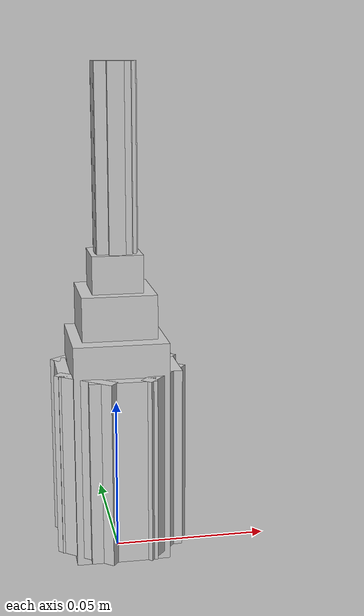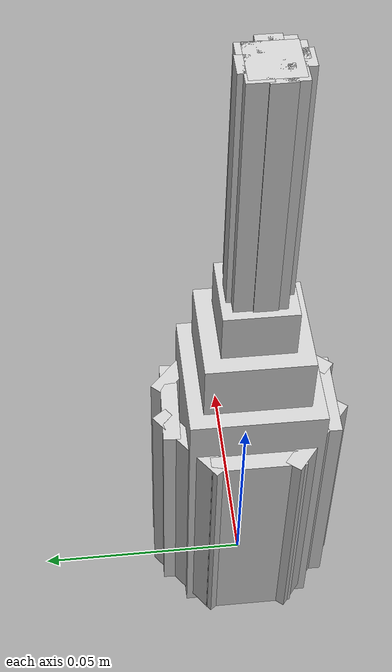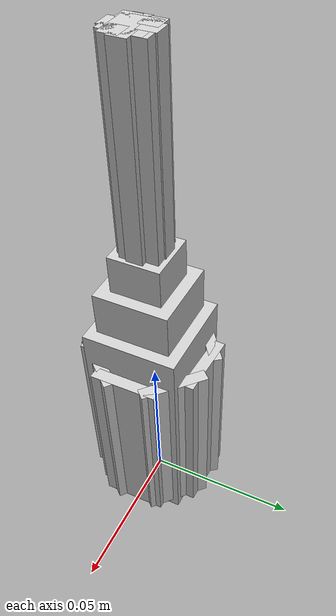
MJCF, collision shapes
<mujoco model="wine_bottle_red_main">
  <asset>
<texture file="label_wine.png" name="tex-wine_bottle_red_logo" type="2d"/>
<material name="wine_bottle_red_logo" reflectance="0.5" texrepeat="1 1" texture="tex-wine_bottle_red_logo" texuniform="false"/>
<mesh file="visual/wine_bottle_red_logo_vis.msh" name="wine_bottle_red_logo_vis" scale="0.505 0.505 0.505"/>
	<texture file="cork_texture.png" name="tex-wine_bottle_red_cork" type="2d"/>
	<material name="wine_bottle_red_cork" reflectance="0.5" texrepeat="1 1" texture="tex-wine_bottle_red_cork" texuniform="false"/>
	<mesh file="visual/wine_bottle_red_cork_vis.msh" name="wine_bottle_red_cork_vis" scale="0.5 0.5 0.5"/>
  <material name="wine_bottle_red_main" reflectance="0.5" texrepeat="1 1" rgba="0.004 0.036 0.002 1" specular="0.5" />
  <mesh file="visual/wine_bottle_red_main_vis.msh" name="wine_bottle_red_main_vis" scale="0.5 0.5 0.5" /></asset>
  <worldbody>
    <body>
      <body name="object">
      <geom solimp="0.998 0.998 0.001" solref="0.001 1" density="100" friction="0.95 0.3 0.1" type="mesh" mesh="wine_bottle_red_main_vis" conaffinity="0" contype="0" group="1" material="wine_bottle_red_main" />
      <geom solimp="0.998 0.998 0.001" solref="0.001 1" density="100" friction="0.95 0.3 0.1" type="mesh" mesh="wine_bottle_red_cork_vis" conaffinity="0" contype="0" group="1" material="wine_bottle_red_cork"/>
<geom solimp="0.998 0.998 0.001" solref="0.001 1" density="100" friction="0.95 0.3 0.1" type="mesh" mesh="wine_bottle_red_logo_vis" conaffinity="0" contype="0" group="1" material="wine_bottle_red_logo"/>

<geom solimp="0.998 0.998 0.001" solref="0.001 1" density="100" friction="0.95 0.3 0.1" type="box" pos="-0.00000 -0.00000 0.03726" quat="0.00000 0.00000 0.00000 1.00000" size="0.01503 0.01503 0.03615" group="0" rgba="0.8 0.8 0.8 0.3"/>
<geom solimp="0.998 0.998 0.001" solref="0.001 1" density="100" friction="0.95 0.3 0.1" type="box" pos="-0.00000 -0.00000 0.10286" quat="0.00000 0.00000 0.00000 1.00000" size="0.00520 0.00520 0.05518" group="0" rgba="0.8 0.8 0.8 0.3"/>
<geom solimp="0.998 0.998 0.001" solref="0.001 1" density="100" friction="0.95 0.3 0.1" type="box" pos="-0.00000 -0.00000 0.08109" quat="0.50000 0.50000 -0.50000 0.50000" size="0.00700 0.01180 0.01180" group="0" rgba="0.8 0.8 0.8 0.3"/>
<geom solimp="0.998 0.998 0.001" solref="0.001 1" density="100" friction="0.95 0.3 0.1" type="box" pos="0.00450 0.00000 0.10286" quat="0.00000 0.00000 0.00000 1.00000" size="0.00258 0.00258 0.05518" group="0" rgba="0.8 0.8 0.8 0.3"/>
<geom solimp="0.998 0.998 0.001" solref="0.001 1" density="100" friction="0.95 0.3 0.1" type="box" pos="0.00381 -0.00246 0.10286" quat="0.00000 0.00000 0.00000 1.00000" size="0.00258 0.00258 0.05518" group="0" rgba="0.8 0.8 0.8 0.3"/>
<geom solimp="0.998 0.998 0.001" solref="0.001 1" density="100" friction="0.95 0.3 0.1" type="box" pos="0.00223 -0.00390 0.10286" quat="0.00000 0.00000 0.00000 1.00000" size="0.00258 0.00258 0.05518" group="0" rgba="0.8 0.8 0.8 0.3"/>
<geom solimp="0.998 0.998 0.001" solref="0.001 1" density="100" friction="0.95 0.3 0.1" type="box" pos="0.00012 -0.00478 0.10286" quat="0.00000 0.00000 0.00000 1.00000" size="0.00258 0.00258 0.05518" group="0" rgba="0.8 0.8 0.8 0.3"/>
<geom solimp="0.998 0.998 0.001" solref="0.001 1" density="100" friction="0.95 0.3 0.1" type="box" pos="-0.00357 -0.00301 0.10286" quat="0.00000 0.70711 0.70711 0.00000" size="0.00258 0.00258 0.05518" group="0" rgba="0.8 0.8 0.8 0.3"/>
<geom solimp="0.998 0.998 0.001" solref="0.001 1" density="100" friction="0.95 0.3 0.1" type="box" pos="-0.00384 -0.00096 0.10286" quat="0.00000 0.00000 1.00000 0.00000" size="0.00258 0.00258 0.05518" group="0" rgba="0.8 0.8 0.8 0.3"/>
<geom solimp="0.998 0.998 0.001" solref="0.001 1" density="100" friction="0.95 0.3 0.1" type="box" pos="-0.00343 0.00314 0.10286" quat="0.00000 0.00000 0.00000 1.00000" size="0.00258 0.00258 0.05518" group="0" rgba="0.8 0.8 0.8 0.3"/>
<geom solimp="0.998 0.998 0.001" solref="0.001 1" density="100" friction="0.95 0.3 0.1" type="box" pos="-0.00070 0.00424 0.10286" quat="0.00000 0.00000 1.00000 0.00000" size="0.00258 0.00258 0.05518" group="0" rgba="0.8 0.8 0.8 0.3"/>
<geom solimp="0.998 0.998 0.001" solref="0.001 1" density="100" friction="0.95 0.3 0.1" type="box" pos="0.00272 0.00383 0.10286" quat="0.00000 0.00000 0.00000 1.00000" size="0.00258 0.00258 0.05518" group="0" rgba="0.8 0.8 0.8 0.3"/>
<geom solimp="0.998 0.998 0.001" solref="0.001 1" density="100" friction="0.95 0.3 0.1" type="box" pos="-0.00000 -0.00000 0.09305" quat="0.50000 0.50000 -0.50000 0.50000" size="0.00700 0.00803 0.00803" group="0" rgba="0.8 0.8 0.8 0.3"/>
<geom solimp="0.998 0.998 0.001" solref="0.001 1" density="100" friction="0.95 0.3 0.1" type="box" pos="-0.01730 -0.00000 0.03331" quat="0.00000 0.00000 1.00000 0.00000" size="0.00193 0.01055 0.02979" group="0" rgba="0.8 0.8 0.8 0.3"/>
<geom solimp="0.998 0.998 0.001" solref="0.001 1" density="100" friction="0.95 0.3 0.1" type="box" pos="0.01789 0.00000 0.03331" quat="0.00000 0.00000 1.00000 0.00000" size="0.00193 0.01055 0.02979" group="0" rgba="0.8 0.8 0.8 0.3"/>
<geom solimp="0.998 0.998 0.001" solref="0.001 1" density="100" friction="0.95 0.3 0.1" type="box" pos="0.00086 0.01787 0.03331" quat="-0.00000 -0.72389 -0.68992 -0.00000" size="0.00193 0.01055 0.02979" group="0" rgba="0.8 0.8 0.8 0.3"/>
<geom solimp="0.998 0.998 0.001" solref="0.001 1" density="100" friction="0.95 0.3 0.1" type="box" pos="-0.00024 -0.01789 0.03331" quat="-0.00000 -0.71183 -0.70235 -0.00000" size="0.00193 0.01055 0.02979" group="0" rgba="0.8 0.8 0.8 0.3"/>
<geom solimp="0.998 0.998 0.001" solref="0.001 1" density="100" friction="0.95 0.3 0.1" type="box" pos="-0.01124 -0.01392 0.03331" quat="0.00000 -0.43119 0.90226 0.00000" size="0.00193 0.01055 0.02979" group="0" rgba="0.8 0.8 0.8 0.3"/>
<geom solimp="0.998 0.998 0.001" solref="0.001 1" density="100" friction="0.95 0.3 0.1" type="box" pos="-0.01071 0.01433 0.03331" quat="0.00000 -0.89402 0.44802 0.00000" size="0.00193 0.01055 0.02979" group="0" rgba="0.8 0.8 0.8 0.3"/>
<geom solimp="0.998 0.998 0.001" solref="0.001 1" density="100" friction="0.95 0.3 0.1" type="box" pos="0.01210 0.01317 0.03331" quat="-0.00000 -0.91561 -0.40207 -0.00000" size="0.00193 0.01055 0.02979" group="0" rgba="0.8 0.8 0.8 0.3"/>
<geom solimp="0.998 0.998 0.001" solref="0.001 1" density="100" friction="0.95 0.3 0.1" type="box" pos="0.01363 -0.01158 0.03331" quat="0.00000 0.34482 0.93867 0.00000" size="0.00193 0.01055 0.02979" group="0" rgba="0.8 0.8 0.8 0.3"/>
</body>
      <site rgba="0 0 0 0" size="0.005" pos="0 0 -0.0240" name="bottom_site" />
      <site rgba="0 0 0 0" size="0.005" pos="0 0 0.04" name="top_site" />
      <site rgba="0 0 0 0" size="0.005" pos="0.025 0.025 0" name="horizontal_radius_site" />
    </body>
  </worldbody>
</mujoco>
